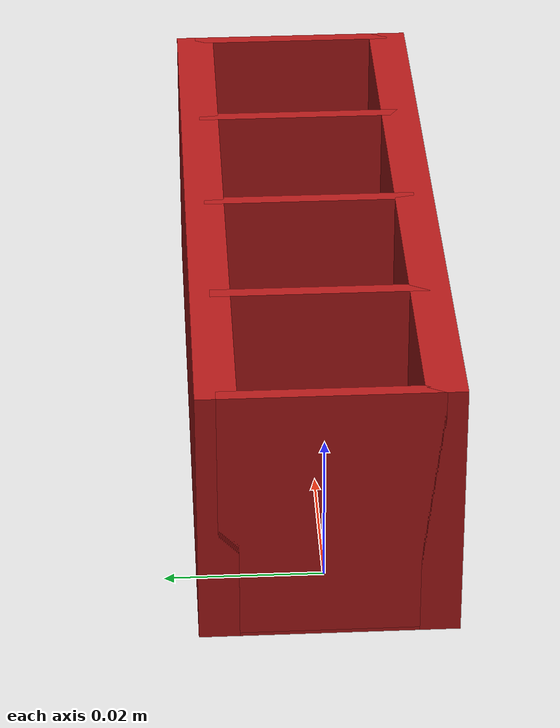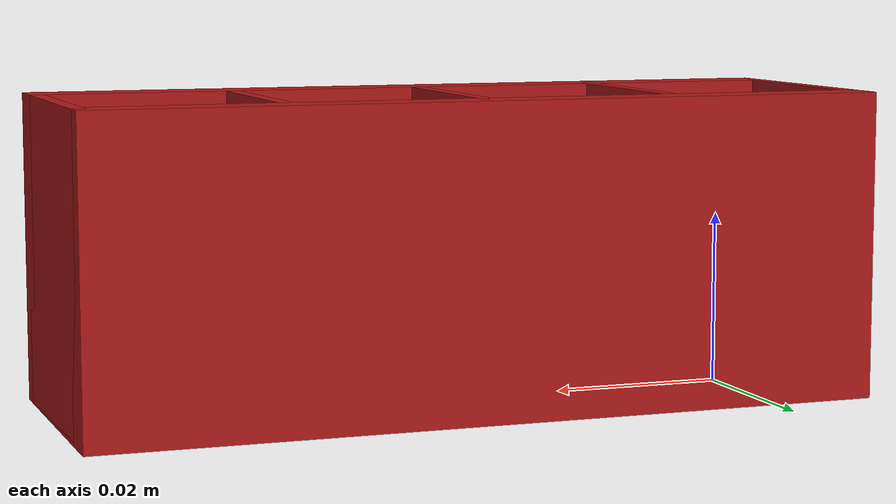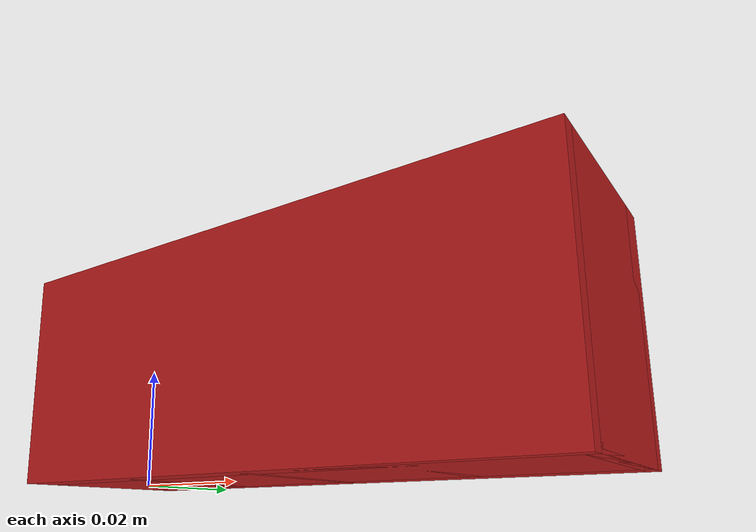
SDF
<?xml version="1.0" ?>
<sdf version="1.5">
  <model name="tube_rack">
    <static>true</static>

    <link name="link">
      <pose>0 0 0 0 0 0</pose>

      <!-- Token floor — see header note on why this is 0.5 mm and not thicker
           or absent. Spans the full rack footprint, centred between the outer
           walls (x = 0.033345). -->
      <collision name="col_floor">
        <pose>0.033345 0 0.00025 0 0 0</pose>
        <geometry><box><size>0.09052 0.027 0.0005</size></box></geometry>
        <surface>
          <contact><ode><kp>1000000</kp><kd>100</kd><max_vel>0.1</max_vel><min_depth>0.001</min_depth></ode></contact>
          <friction><ode><mu>1.0</mu><mu2>1.0</mu2></ode></friction>
        </surface>
      </collision>
      <visual name="vis_floor">
        <pose>0.033345 0 0.00025 0 0 0</pose>
        <geometry><box><size>0.09052 0.027 0.0005</size></box></geometry>
        <material><ambient>0.7 0.1 0.1 1</ambient><diffuse>0.7 0.1 0.1 1</diffuse></material>
      </visual>

      <!-- Transverse dividing walls: 5 walls create 4 slots. Wall k sits
           between slot k-1 and slot k, at x = k * 0.02223 - 0.011115. -->
      <collision name="col_wall_0">
        <pose>-0.011115 0 0.0175 0 0 0</pose>
        <geometry><box><size>0.0016 0.027 0.035</size></box></geometry>
        <surface><contact><ode><kp>1000000</kp><kd>100</kd></ode></contact><friction><ode><mu>1.0</mu><mu2>1.0</mu2></ode></friction></surface>
      </collision>
      <visual name="vis_wall_0">
        <pose>-0.011115 0 0.0175 0 0 0</pose>
        <geometry><box><size>0.0016 0.027 0.035</size></box></geometry>
        <material><ambient>0.7 0.1 0.1 1</ambient><diffuse>0.7 0.1 0.1 1</diffuse></material>
      </visual>

      <collision name="col_wall_1">
        <pose>0.011115 0 0.0175 0 0 0</pose>
        <geometry><box><size>0.0016 0.027 0.035</size></box></geometry>
        <surface><contact><ode><kp>1000000</kp><kd>100</kd></ode></contact><friction><ode><mu>1.0</mu><mu2>1.0</mu2></ode></friction></surface>
      </collision>
      <visual name="vis_wall_1">
        <pose>0.011115 0 0.0175 0 0 0</pose>
        <geometry><box><size>0.0016 0.027 0.035</size></box></geometry>
        <material><ambient>0.7 0.1 0.1 1</ambient><diffuse>0.7 0.1 0.1 1</diffuse></material>
      </visual>

      <collision name="col_wall_2">
        <pose>0.033345 0 0.0175 0 0 0</pose>
        <geometry><box><size>0.0016 0.027 0.035</size></box></geometry>
        <surface><contact><ode><kp>1000000</kp><kd>100</kd></ode></contact><friction><ode><mu>1.0</mu><mu2>1.0</mu2></ode></friction></surface>
      </collision>
      <visual name="vis_wall_2">
        <pose>0.033345 0 0.0175 0 0 0</pose>
        <geometry><box><size>0.0016 0.027 0.035</size></box></geometry>
        <material><ambient>0.7 0.1 0.1 1</ambient><diffuse>0.7 0.1 0.1 1</diffuse></material>
      </visual>

      <collision name="col_wall_3">
        <pose>0.055575 0 0.0175 0 0 0</pose>
        <geometry><box><size>0.0016 0.027 0.035</size></box></geometry>
        <surface><contact><ode><kp>1000000</kp><kd>100</kd></ode></contact><friction><ode><mu>1.0</mu><mu2>1.0</mu2></ode></friction></surface>
      </collision>
      <visual name="vis_wall_3">
        <pose>0.055575 0 0.0175 0 0 0</pose>
        <geometry><box><size>0.0016 0.027 0.035</size></box></geometry>
        <material><ambient>0.7 0.1 0.1 1</ambient><diffuse>0.7 0.1 0.1 1</diffuse></material>
      </visual>

      <collision name="col_wall_4">
        <pose>0.077805 0 0.0175 0 0 0</pose>
        <geometry><box><size>0.0016 0.027 0.035</size></box></geometry>
        <surface><contact><ode><kp>1000000</kp><kd>100</kd></ode></contact><friction><ode><mu>1.0</mu><mu2>1.0</mu2></ode></friction></surface>
      </collision>
      <visual name="vis_wall_4">
        <pose>0.077805 0 0.0175 0 0 0</pose>
        <geometry><box><size>0.0016 0.027 0.035</size></box></geometry>
        <material><ambient>0.7 0.1 0.1 1</ambient><diffuse>0.7 0.1 0.1 1</diffuse></material>
      </visual>

      <!-- Lateral walls, running the full length of the rack -->
      <collision name="col_side_front">
        <pose>0.033345 -0.0135 0.0175 0 0 0</pose>
        <geometry><box><size>0.09052 0.005 0.035</size></box></geometry>
        <surface><contact><ode><kp>1000000</kp><kd>100</kd></ode></contact><friction><ode><mu>1.0</mu><mu2>1.0</mu2></ode></friction></surface>
      </collision>
      <visual name="vis_side_front">
        <pose>0.033345 -0.0135 0.0175 0 0 0</pose>
        <geometry><box><size>0.09052 0.005 0.035</size></box></geometry>
        <material><ambient>0.7 0.1 0.1 1</ambient><diffuse>0.7 0.1 0.1 1</diffuse></material>
      </visual>

      <collision name="col_side_back">
        <pose>0.033345 0.0135 0.0175 0 0 0</pose>
        <geometry><box><size>0.09052 0.005 0.035</size></box></geometry>
        <surface><contact><ode><kp>1000000</kp><kd>100</kd></ode></contact><friction><ode><mu>1.0</mu><mu2>1.0</mu2></ode></friction></surface>
      </collision>
      <visual name="vis_side_back">
        <pose>0.033345 0.0135 0.0175 0 0 0</pose>
        <geometry><box><size>0.09052 0.005 0.035</size></box></geometry>
        <material><ambient>0.7 0.1 0.1 1</ambient><diffuse>0.7 0.1 0.1 1</diffuse></material>
      </visual>

    </link>
  </model>
</sdf>
